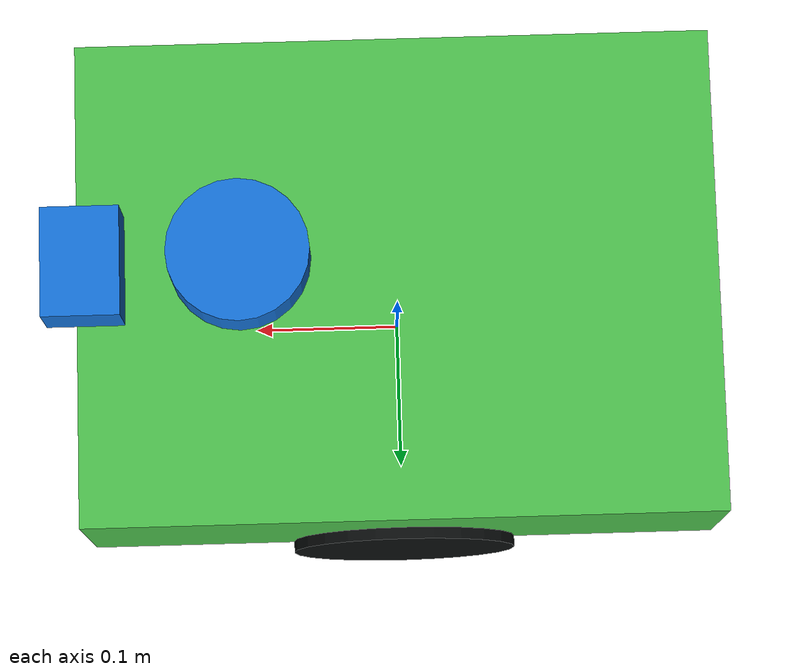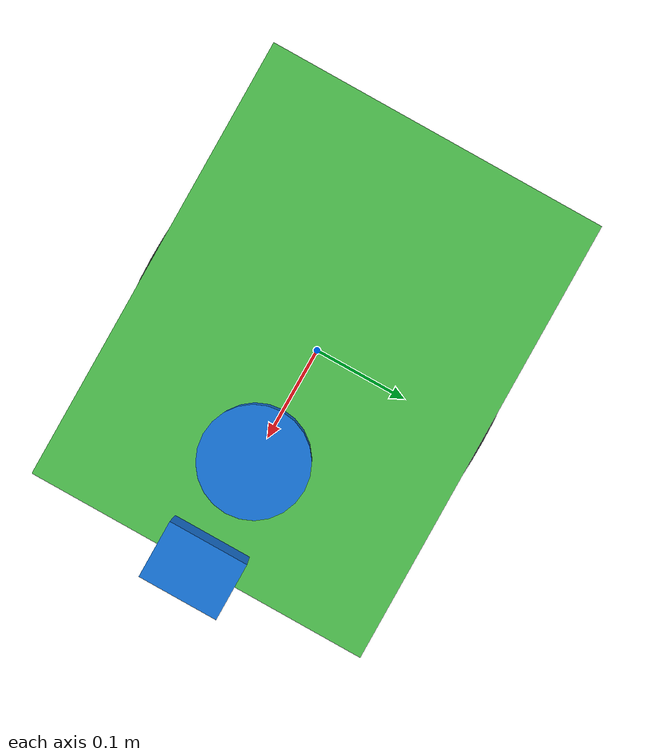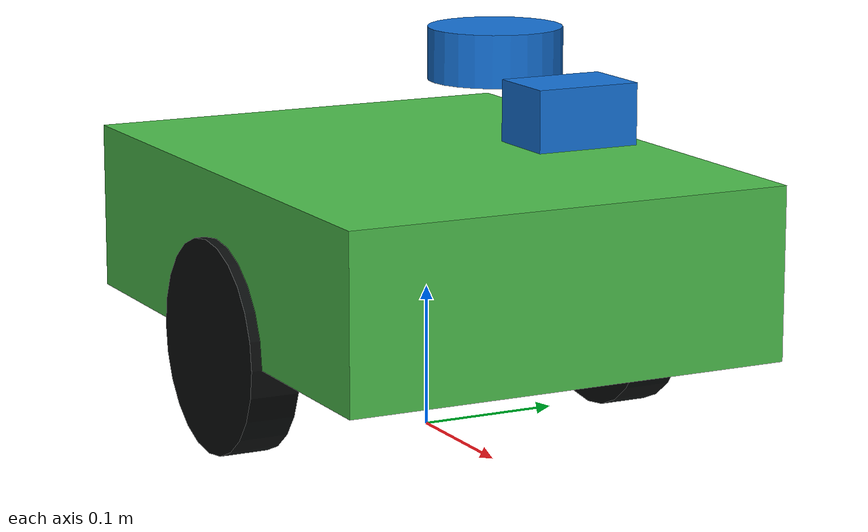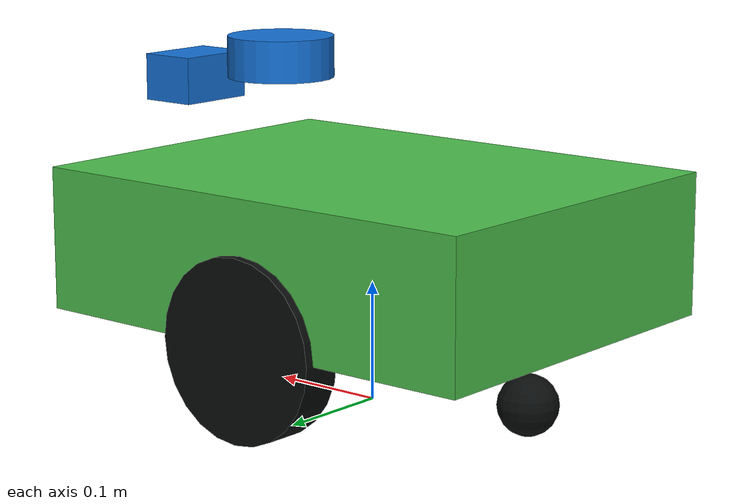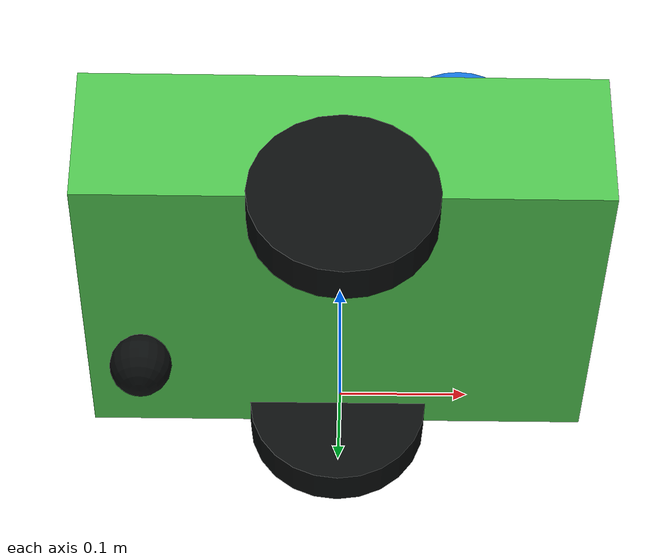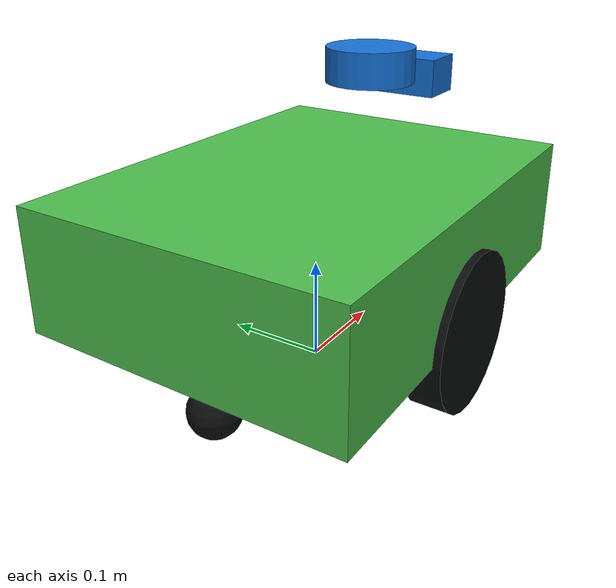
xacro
<?xml version="1.0"?>
<robot xmlns:xacro="http://www.ros.org/wiki/xacro" name="rover">
  <xacro:arg name="use_mock_hardware" default="true"/>
  <xacro:arg name="use_gazebo" default="false"/>
  <xacro:arg name="left_wheel_radius" default="0.075"/>
  <xacro:arg name="right_wheel_radius" default="0.075"/>
  <xacro:property name="base_length" value="0.42"/>
  <xacro:property name="base_width" value="0.32"/>
  <xacro:property name="base_height" value="0.12"/>
  <xacro:property name="wheel_radius" value="0.075"/>
  <xacro:property name="wheel_width" value="0.035"/>
  <xacro:property name="wheel_separation" value="0.30"/>

  <material name="forge_green"><color rgba="0.30 0.75 0.30 1"/></material>
  <material name="wheel_black"><color rgba="0.04 0.05 0.05 1"/></material>
  <material name="lidar_blue"><color rgba="0.08 0.45 0.85 1"/></material>

  <link name="base_footprint"/>
  <joint name="base_footprint_joint" type="fixed">
    <parent link="base_footprint"/><child link="base_link"/>
    <origin xyz="0 0 ${wheel_radius}"/>
  </joint>

  <link name="base_link">
    <visual><origin xyz="0 0 ${base_height / 2}"/><geometry><box size="${base_length} ${base_width} ${base_height}"/></geometry><material name="forge_green"/></visual>
    <collision name="base_collision"><origin xyz="0 0 ${base_height / 2}"/><geometry><box size="${base_length} ${base_width} ${base_height}"/></geometry></collision>
    <inertial><origin xyz="0 0 ${base_height / 2}"/><mass value="8.0"/><inertia ixx="0.0789" ixy="0" ixz="0" iyy="0.1276" iyz="0" izz="0.1750"/></inertial>
  </link>

  <xacro:macro name="wheel" params="prefix y radius">
    <link name="${prefix}_wheel_link">
      <visual><origin rpy="${pi/2} 0 0"/><geometry><cylinder radius="${radius}" length="${wheel_width}"/></geometry><material name="wheel_black"/></visual>
      <collision><origin rpy="${pi/2} 0 0"/><geometry><cylinder radius="${radius}" length="${wheel_width}"/></geometry></collision>
      <inertial><mass value="0.45"/><inertia ixx="0.00139" ixy="0" ixz="0" iyy="0.00253" iyz="0" izz="0.00139"/></inertial>
    </link>
    <joint name="${prefix}_wheel_joint" type="continuous">
      <parent link="base_link"/><child link="${prefix}_wheel_link"/>
      <origin xyz="0 ${y} 0" rpy="0 0 0"/><axis xyz="0 1 0"/>
    </joint>
  </xacro:macro>
  <xacro:wheel prefix="left" y="${wheel_separation / 2}" radius="$(arg left_wheel_radius)"/>
  <xacro:wheel prefix="right" y="${-wheel_separation / 2}" radius="$(arg right_wheel_radius)"/>

  <link name="caster_link">
    <visual><geometry><sphere radius="0.025"/></geometry><material name="wheel_black"/></visual>
    <collision><geometry><sphere radius="0.025"/></geometry></collision>
    <inertial><mass value="0.1"/><inertia ixx="0.000025" ixy="0" ixz="0" iyy="0.000025" iyz="0" izz="0.000025"/></inertial>
  </link>
  <joint name="caster_joint" type="fixed"><parent link="base_link"/><child link="caster_link"/><origin xyz="-0.16 0 -0.05"/></joint>

  <link name="lidar_link">
    <visual><geometry><cylinder radius="0.045" length="0.035"/></geometry><material name="lidar_blue"/></visual>
    <collision><geometry><cylinder radius="0.045" length="0.035"/></geometry></collision>
    <inertial><mass value="0.18"/><inertia ixx="0.000068" ixy="0" ixz="0" iyy="0.000068" iyz="0" izz="0.000182"/></inertial>
  </link>
  <joint name="lidar_joint" type="fixed">
    <parent link="base_link"/><child link="lidar_link"/><origin xyz="0.10 0 0.205"/>
  </joint>

  <link name="camera_link">
    <visual><geometry><box size="0.05 0.07 0.04"/></geometry><material name="lidar_blue"/></visual>
    <inertial><mass value="0.08"/><inertia ixx="0.00004" ixy="0" ixz="0" iyy="0.00004" iyz="0" izz="0.00004"/></inertial>
  </link>
  <joint name="camera_joint" type="fixed">
    <parent link="base_link"/><child link="camera_link"/><origin xyz="0.20 0 0.18"/>
  </joint>

  <ros2_control name="RoverDriveSystem" type="system">
    <hardware>
      <xacro:if value="$(arg use_gazebo)">
        <plugin>gz_ros2_control/GazeboSimSystem</plugin>
      </xacro:if>
      <xacro:unless value="$(arg use_gazebo)">
        <plugin>mock_components/GenericSystem</plugin>
        <param name="calculate_dynamics">true</param>
      </xacro:unless>
    </hardware>
    <joint name="left_wheel_joint">
      <command_interface name="velocity"><param name="min">-12.0</param><param name="max">12.0</param></command_interface>
      <state_interface name="position"/><state_interface name="velocity"/>
    </joint>
    <joint name="right_wheel_joint">
      <command_interface name="velocity"><param name="min">-12.0</param><param name="max">12.0</param></command_interface>
      <state_interface name="position"/><state_interface name="velocity"/>
    </joint>
  </ros2_control>

  <!-- Gazebo contact parameters. Nonzero slip plus intentionally biased wheel
       radii in gazebo_rover.launch.py create a repeatable odometry calibration case. -->
  <gazebo reference="left_wheel_link"><mu1>0.95</mu1><mu2>0.95</mu2><slip1>0.02</slip1><slip2>0.02</slip2></gazebo>
  <gazebo reference="right_wheel_link"><mu1>0.90</mu1><mu2>0.90</mu2><slip1>0.025</slip1><slip2>0.025</slip2></gazebo>
  <gazebo reference="caster_link"><mu1>0.08</mu1><mu2>0.08</mu2></gazebo>
  <xacro:if value="$(arg use_gazebo)">
    <gazebo reference="lidar_link">
      <sensor name="front_lidar" type="gpu_lidar">
        <topic>/scan</topic>
        <update_rate>15</update_rate>
        <always_on>true</always_on>
        <visualize>true</visualize>
        <ray>
          <scan>
            <horizontal>
              <samples>720</samples><resolution>1</resolution>
              <min_angle>-${pi}</min_angle><max_angle>${pi}</max_angle>
            </horizontal>
            <vertical>
              <samples>1</samples><resolution>1</resolution>
              <min_angle>0</min_angle><max_angle>0</max_angle>
            </vertical>
          </scan>
          <range><min>0.12</min><max>12.0</max><resolution>0.01</resolution></range>
          <noise><type>gaussian</type><mean>0.0</mean><stddev>0.012</stddev></noise>
        </ray>
      </sensor>
    </gazebo>
    <gazebo reference="camera_link">
      <sensor name="front_camera" type="camera">
        <topic>/camera/image_raw</topic>
        <update_rate>10</update_rate>
        <always_on>true</always_on>
        <camera>
          <horizontal_fov>1.047</horizontal_fov>
          <image><width>640</width><height>480</height><format>R8G8B8</format></image>
          <clip><near>0.08</near><far>20.0</far></clip>
        </camera>
      </sensor>
    </gazebo>
    <gazebo reference="base_link">
      <sensor name="base_contact" type="contact">
        <topic>/bumper/contacts</topic>
        <update_rate>100</update_rate>
        <always_on>true</always_on>
        <contact><collision>base_collision</collision></contact>
      </sensor>
    </gazebo>
  </xacro:if>

  <xacro:if value="$(arg use_gazebo)">
    <gazebo>
      <plugin filename="libgz_ros2_control-system.so" name="gz_ros2_control::GazeboSimROS2ControlPlugin">
        <parameters>$(find rover_bringup)/config/gazebo_controllers.yaml</parameters>
        <hold_joints>true</hold_joints>
        <ros>
          <remapping>/diff_drive_controller/cmd_vel_unstamped:=/cmd_vel_safe</remapping>
        </ros>
      </plugin>
    </gazebo>
  </xacro:if>
</robot>
